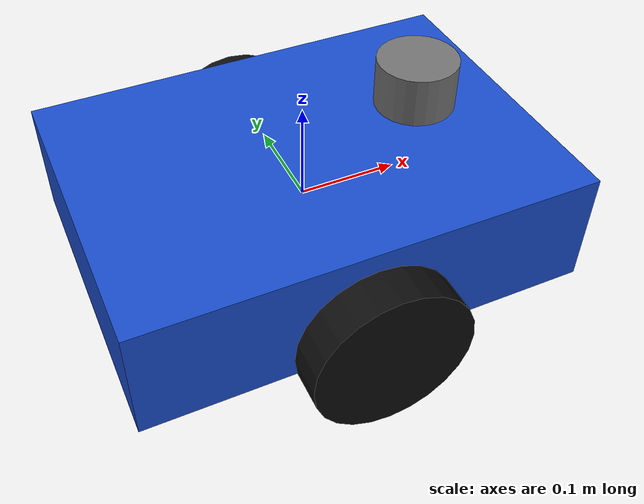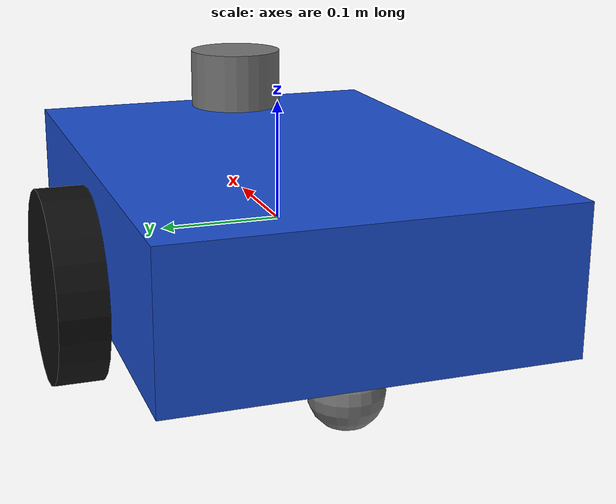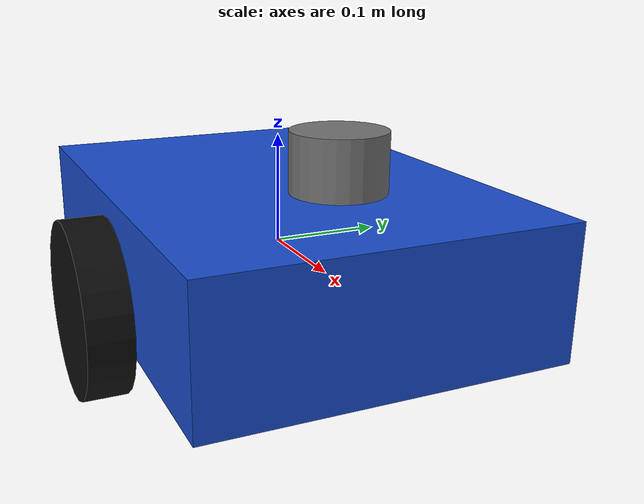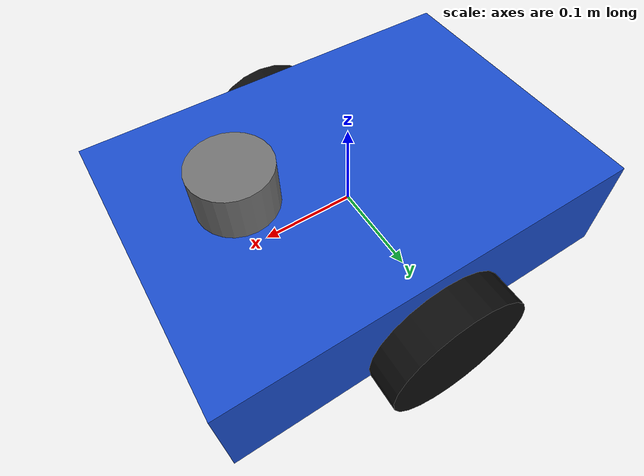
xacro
<?xml version="1.0"?>
<robot xmlns:xacro="http://www.ros.org/wiki/xacro" name="ci_bot">

  <xacro:property name="base_length" value="0.45"/>
  <xacro:property name="base_width" value="0.32"/>
  <xacro:property name="base_height" value="0.12"/>

  <xacro:property name="wheel_radius" value="0.08"/>
  <xacro:property name="wheel_width" value="0.04"/>
  <xacro:property name="wheel_y" value="0.18"/>
  <xacro:property name="wheel_z" value="-0.04"/>

  <material name="blue">
    <color rgba="0.10 0.30 0.80 1.0"/>
  </material>

  <material name="black">
    <color rgba="0.05 0.05 0.05 1.0"/>
  </material>

  <material name="grey">
    <color rgba="0.45 0.45 0.45 1.0"/>
  </material>

  <!-- Inertial-free root frame for KDL / robot_state_publisher -->

  <link name="base_footprint"/>

  <joint name="base_footprint_joint" type="fixed">
    <parent link="base_footprint"/>
    <child link="base_link"/>
    <origin xyz="0 0 0" rpy="0 0 0"/>
  </joint>

  <!-- Main chassis -->

  <link name="base_link">

    <visual>
      <geometry>
        <box size="${base_length} ${base_width} ${base_height}"/>
      </geometry>
      <material name="blue"/>
    </visual>

    <collision>
      <geometry>
        <box size="${base_length} ${base_width} ${base_height}"/>
      </geometry>
    </collision>

    <inertial>
      <mass value="8.0"/>
      <inertia
        ixx="0.0779"
        ixy="0.0"
        ixz="0.0"
        iyy="0.1446"
        iyz="0.0"
        izz="0.2033"/>
    </inertial>

  </link>

  <!-- Left wheel -->

  <link name="left_wheel_link">

    <visual>
      <origin rpy="${pi / 2.0} 0 0"/>
      <geometry>
        <cylinder
          radius="${wheel_radius}"
          length="${wheel_width}"/>
      </geometry>
      <material name="black"/>
    </visual>

    <collision>
      <origin rpy="${pi / 2.0} 0 0"/>
      <geometry>
        <cylinder
          radius="${wheel_radius}"
          length="${wheel_width}"/>
      </geometry>
    </collision>

    <inertial>
      <mass value="0.5"/>
      <inertia
        ixx="0.00087"
        ixy="0.0"
        ixz="0.0"
        iyy="0.00160"
        iyz="0.0"
        izz="0.00087"/>
    </inertial>

  </link>

  <joint name="left_wheel_joint" type="continuous">
    <parent link="base_link"/>
    <child link="left_wheel_link"/>
    <origin xyz="0 ${wheel_y} ${wheel_z}"/>
    <axis xyz="0 1 0"/>
  </joint>

  <!-- Right wheel -->

  <link name="right_wheel_link">

    <visual>
      <origin rpy="${pi / 2.0} 0 0"/>
      <geometry>
        <cylinder
          radius="${wheel_radius}"
          length="${wheel_width}"/>
      </geometry>
      <material name="black"/>
    </visual>

    <collision>
      <origin rpy="${pi / 2.0} 0 0"/>
      <geometry>
        <cylinder
          radius="${wheel_radius}"
          length="${wheel_width}"/>
      </geometry>
    </collision>

    <inertial>
      <mass value="0.5"/>
      <inertia
        ixx="0.00087"
        ixy="0.0"
        ixz="0.0"
        iyy="0.00160"
        iyz="0.0"
        izz="0.00087"/>
    </inertial>

  </link>

  <joint name="right_wheel_joint" type="continuous">
    <parent link="base_link"/>
    <child link="right_wheel_link"/>
    <origin xyz="0 -${wheel_y} ${wheel_z}"/>
    <axis xyz="0 1 0"/>
  </joint>

  <!-- Rear caster -->

  <link name="caster_link">

    <visual>
      <geometry>
        <sphere radius="0.03"/>
      </geometry>
      <material name="grey"/>
    </visual>

    <collision>
      <geometry>
        <sphere radius="0.03"/>
      </geometry>
    </collision>

    <inertial>
      <mass value="0.2"/>
      <inertia
        ixx="0.000072"
        ixy="0.0"
        ixz="0.0"
        iyy="0.000072"
        iyz="0.0"
        izz="0.000072"/>
    </inertial>

  </link>

  <joint name="caster_joint" type="fixed">
    <parent link="base_link"/>
    <child link="caster_link"/>
    <origin xyz="-0.16 0 -0.09"/>
  </joint>

  <!-- LiDAR body -->

  <link name="laser_frame">

    <visual>
      <geometry>
        <cylinder radius="0.04" length="0.05"/>
      </geometry>
      <material name="grey"/>
    </visual>

    <collision>
      <geometry>
        <cylinder radius="0.04" length="0.05"/>
      </geometry>
    </collision>

    <inertial>
      <mass value="0.2"/>
      <inertia
        ixx="0.000122"
        ixy="0.0"
        ixz="0.0"
        iyy="0.000122"
        iyz="0.0"
        izz="0.000160"/>
    </inertial>

  </link>

  <joint name="laser_joint" type="fixed">
    <parent link="base_link"/>
    <child link="laser_frame"/>
    <origin xyz="0.12 0 0.10"/>
  </joint>

  <!-- Gazebo LiDAR sensor -->

  <gazebo reference="laser_frame">
    <sensor name="gpu_lidar" type="gpu_lidar">
      <topic>/scan_raw</topic>
      <gz_frame_id>laser_frame</gz_frame_id>
      <update_rate>10</update_rate>
      <lidar>
        <scan>
          <horizontal>
            <samples>360</samples>
            <resolution>1</resolution>
            <min_angle>-${pi}</min_angle>
            <max_angle>${pi}</max_angle>
          </horizontal>
          <vertical>
            <samples>1</samples>
            <resolution>1</resolution>
            <min_angle>0.0</min_angle>
            <max_angle>0.0</max_angle>
          </vertical>
        </scan>
        <range>
          <min>0.08</min>
          <max>8.0</max>
          <resolution>0.01</resolution>
        </range>
      </lidar>
      <always_on>true</always_on>
      <visualize>false</visualize>
    </sensor>
  </gazebo>

  <!-- Gazebo differential-drive system -->

  <gazebo>
    <plugin
      filename="gz-sim-diff-drive-system"
      name="gz::sim::systems::DiffDrive">
      <left_joint>left_wheel_joint</left_joint>
      <right_joint>right_wheel_joint</right_joint>
      <wheel_separation>${2.0 * wheel_y}</wheel_separation>
      <wheel_radius>${wheel_radius}</wheel_radius>
      <odom_publish_frequency>50</odom_publish_frequency>
      <topic>/cmd_vel</topic>
      <odom_topic>/odom</odom_topic>
    </plugin>
  </gazebo>

</robot>
